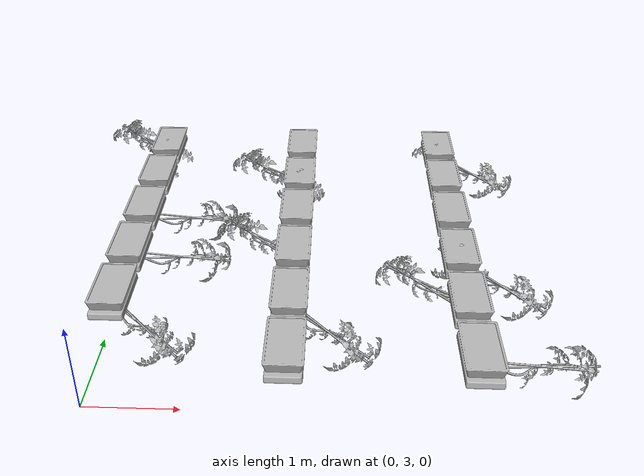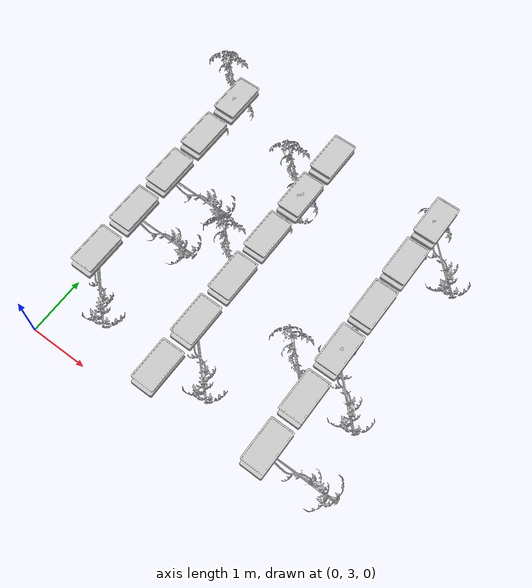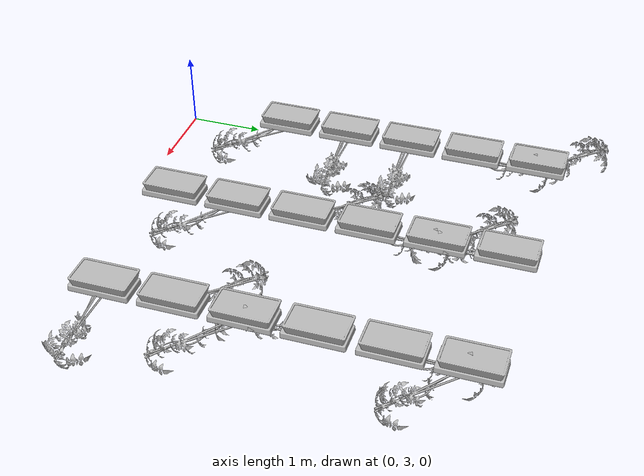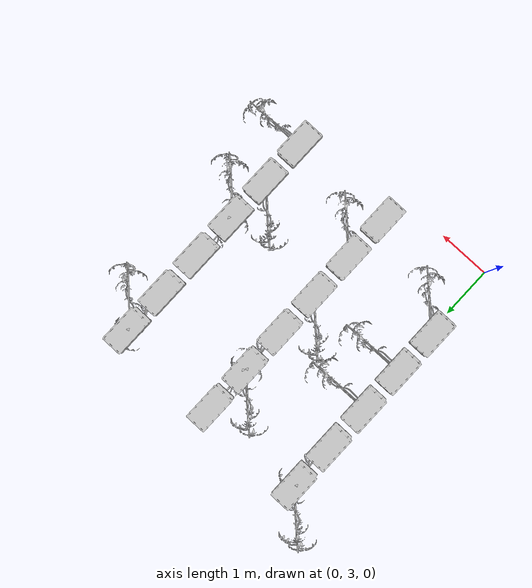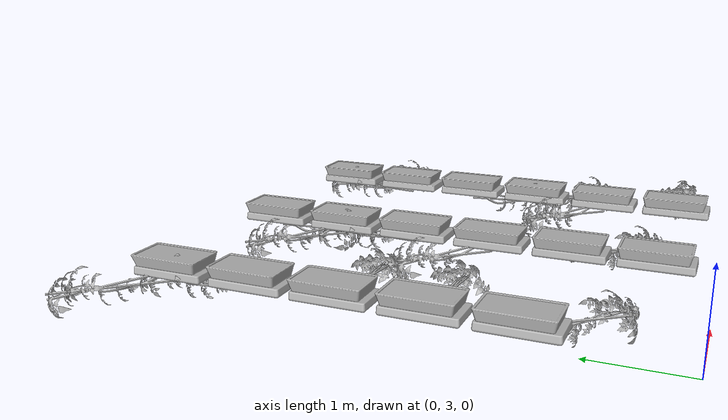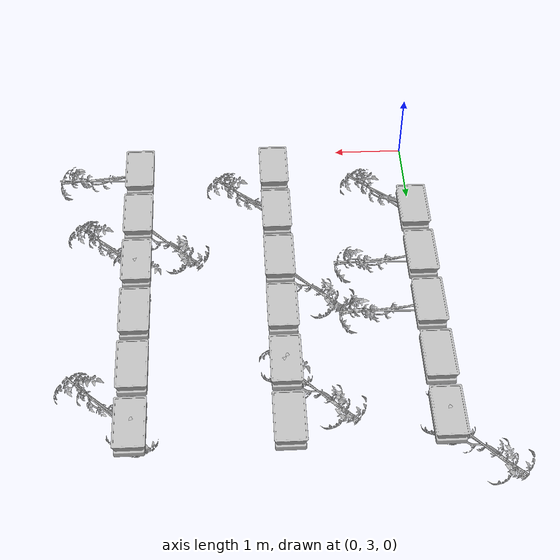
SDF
<sdf version="1.6">
 <world name="default">
  <model name="plant05">
   <static>1</static>
   <link name="tomato_plant_link">
    <visual name="visual">
     <pose>0 0 0 1.57 -0 0</pose>
     <geometry><mesh><uri>model://tomato_plant/meshes/tomato_plant.obj</uri></mesh></geometry>
    </visual>
    <collision name="collision"><geometry><box><size>0.1 0.1 0.1</size></box></geometry></collision>
   </link>
   <pose>0 4.5 0.18 0 -0 0.785</pose>
  </model>
  <model name="trough05">
   <static>1</static>
   <link name="trough_link">
    <visual name="visual"><geometry><mesh><uri>model://trough/meshes/truf.obj</uri></mesh></geometry></visual>
    <collision name="collision">
     <geometry><mesh><uri>model://trough/meshes/truf.obj</uri></mesh></geometry>
    </collision>
   </link>
   <pose>0 4.5 0.18 1.57 -0 1.57</pose>
  </model>
  <model name="plant06">
   <static>1</static>
   <link name="tomato_plant_link">
    <visual name="visual">
     <pose>0 0 0 1.57 -0 0</pose>
     <geometry><mesh><uri>model://tomato_plant/meshes/tomato_plant.obj</uri></mesh></geometry>
    </visual>
    <collision name="collision"><geometry><box><size>0.1 0.1 0.1</size></box></geometry></collision>
   </link>
   <pose>0 5.4 0.18 0 -0 1.57</pose>
  </model>
  <model name="trough06">
   <static>1</static>
   <link name="trough_link">
    <visual name="visual"><geometry><mesh><uri>model://trough/meshes/truf.obj</uri></mesh></geometry></visual>
    <collision name="collision">
     <geometry><mesh><uri>model://trough/meshes/truf.obj</uri></mesh></geometry>
    </collision>
   </link>
   <pose>0 5.4 0.18 1.57 -0 1.57</pose>
  </model>
  <model name="plant07">
   <static>1</static>
   <link name="tomato_plant_link">
    <visual name="visual">
     <pose>0 0 0 1.57 -0 0</pose>
     <geometry><mesh><uri>model://tomato_plant/meshes/tomato_plant.obj</uri></mesh></geometry>
    </visual>
    <collision name="collision"><geometry><box><size>0.1 0.1 0.1</size></box></geometry></collision>
   </link>
   <pose>0 6.3 0.18 0 -0 1.57</pose>
  </model>
  <model name="trough07">
   <static>1</static>
   <link name="trough_link">
    <visual name="visual"><geometry><mesh><uri>model://trough/meshes/truf.obj</uri></mesh></geometry></visual>
    <collision name="collision">
     <geometry><mesh><uri>model://trough/meshes/truf.obj</uri></mesh></geometry>
    </collision>
   </link>
   <pose>0 6.3 0.18 1.57 -0 1.57</pose>
  </model>
  <model name="plant08">
   <static>1</static>
   <link name="tomato_plant_link">
    <visual name="visual">
     <pose>0 0 0 1.57 -0 0</pose>
     <geometry><mesh><uri>model://tomato_plant/meshes/tomato_plant.obj</uri></mesh></geometry>
    </visual>
    <collision name="collision"><geometry><box><size>0.1 0.1 0.1</size></box></geometry></collision>
   </link>
   <pose>0 7.2 0.18 0 -0 3.14</pose>
  </model>
  <model name="trough08">
   <static>1</static>
   <link name="trough_link">
    <visual name="visual"><geometry><mesh><uri>model://trough/meshes/truf.obj</uri></mesh></geometry></visual>
    <collision name="collision">
     <geometry><mesh><uri>model://trough/meshes/truf.obj</uri></mesh></geometry>
    </collision>
   </link>
   <pose>0 7.2 0.18 1.57 -0 1.57</pose>
  </model>
  <model name="plant09">
   <static>1</static>
   <link name="tomato_plant_link">
    <visual name="visual">
     <pose>0 0 0 1.57 -0 0</pose>
     <geometry><mesh><uri>model://tomato_plant/meshes/tomato_plant.obj</uri></mesh></geometry>
    </visual>
    <collision name="collision"><geometry><box><size>0.1 0.1 0.1</size></box></geometry></collision>
   </link>
   <pose>0 8.1 0.18 0 0 -2.35319</pose>
  </model>
  <model name="trough09">
   <static>1</static>
   <link name="trough_link">
    <visual name="visual"><geometry><mesh><uri>model://trough/meshes/truf.obj</uri></mesh></geometry></visual>
    <collision name="collision">
     <geometry><mesh><uri>model://trough/meshes/truf.obj</uri></mesh></geometry>
    </collision>
   </link>
   <pose>0 8.1 0.18 1.57 -0 1.57</pose>
  </model>
  <model name="trough14">
   <static>1</static>
   <link name="trough_link">
    <visual name="visual"><geometry><mesh><uri>model://trough/meshes/truf.obj</uri></mesh></geometry></visual>
    <collision name="collision">
     <geometry><mesh><uri>model://trough/meshes/truf.obj</uri></mesh></geometry>
    </collision>
   </link>
   <pose>2 3.6 0.18 1.57 -0 1.57</pose>
  </model>
  <model name="plant15">
   <static>1</static>
   <link name="tomato_plant_link">
    <visual name="visual">
     <pose>0 0 0 1.57 -0 0</pose>
     <geometry><mesh><uri>model://tomato_plant/meshes/tomato_plant.obj</uri></mesh></geometry>
    </visual>
    <collision name="collision"><geometry><box><size>0.1 0.1 0.1</size></box></geometry></collision>
   </link>
   <pose>2 4.5 0.18 0 -0 0.785</pose>
  </model>
  <model name="trough15">
   <static>1</static>
   <link name="trough_link">
    <visual name="visual"><geometry><mesh><uri>model://trough/meshes/truf.obj</uri></mesh></geometry></visual>
    <collision name="collision">
     <geometry><mesh><uri>model://trough/meshes/truf.obj</uri></mesh></geometry>
    </collision>
   </link>
   <pose>2 4.5 0.18 1.57 -0 1.57</pose>
  </model>
  <model name="plant16">
   <static>1</static>
   <link name="tomato_plant_link">
    <visual name="visual">
     <pose>0 0 0 1.57 -0 0</pose>
     <geometry><mesh><uri>model://tomato_plant/meshes/tomato_plant.obj</uri></mesh></geometry>
    </visual>
    <collision name="collision"><geometry><box><size>0.1 0.1 0.1</size></box></geometry></collision>
   </link>
   <pose>2 5.4 0.18 0 0 -2.35319</pose>
  </model>
  <model name="trough16">
   <static>1</static>
   <link name="trough_link">
    <visual name="visual"><geometry><mesh><uri>model://trough/meshes/truf.obj</uri></mesh></geometry></visual>
    <collision name="collision">
     <geometry><mesh><uri>model://trough/meshes/truf.obj</uri></mesh></geometry>
    </collision>
   </link>
   <pose>2 5.4 0.18 1.57 -0 1.57</pose>
  </model>
  <model name="plant17">
   <static>1</static>
   <link name="tomato_plant_link">
    <visual name="visual">
     <pose>0 0 0 1.57 -0 0</pose>
     <geometry><mesh><uri>model://tomato_plant/meshes/tomato_plant.obj</uri></mesh></geometry>
    </visual>
    <collision name="collision"><geometry><box><size>0.1 0.1 0.1</size></box></geometry></collision>
   </link>
   <pose>2 6.3 0.18 0 -0 3.14</pose>
  </model>
  <model name="trough17">
   <static>1</static>
   <link name="trough_link">
    <visual name="visual"><geometry><mesh><uri>model://trough/meshes/truf.obj</uri></mesh></geometry></visual>
    <collision name="collision">
     <geometry><mesh><uri>model://trough/meshes/truf.obj</uri></mesh></geometry>
    </collision>
   </link>
   <pose>2 6.3 0.18 1.57 -0 1.57</pose>
  </model>
  <model name="plant18">
   <static>1</static>
   <link name="tomato_plant_link">
    <visual name="visual">
     <pose>0 0 0 1.57 -0 0</pose>
     <geometry><mesh><uri>model://tomato_plant/meshes/tomato_plant.obj</uri></mesh></geometry>
    </visual>
    <collision name="collision"><geometry><box><size>0.1 0.1 0.1</size></box></geometry></collision>
   </link>
   <pose>2 7.2 0.18 0 0 -2.35319</pose>
  </model>
  <model name="trough18">
   <static>1</static>
   <link name="trough_link">
    <visual name="visual"><geometry><mesh><uri>model://trough/meshes/truf.obj</uri></mesh></geometry></visual>
    <collision name="collision">
     <geometry><mesh><uri>model://trough/meshes/truf.obj</uri></mesh></geometry>
    </collision>
   </link>
   <pose>2 7.2 0.18 1.57 -0 1.57</pose>
  </model>
  <model name="plant19">
   <static>1</static>
   <link name="tomato_plant_link">
    <visual name="visual">
     <pose>0 0 0 1.57 -0 0</pose>
     <geometry><mesh><uri>model://tomato_plant/meshes/tomato_plant.obj</uri></mesh></geometry>
    </visual>
    <collision name="collision"><geometry><box><size>0.1 0.1 0.1</size></box></geometry></collision>
   </link>
   <pose>2 8.1 0.18 0 -0 0</pose>
  </model>
  <model name="trough19">
   <static>1</static>
   <link name="trough_link">
    <visual name="visual"><geometry><mesh><uri>model://trough/meshes/truf.obj</uri></mesh></geometry></visual>
    <collision name="collision">
     <geometry><mesh><uri>model://trough/meshes/truf.obj</uri></mesh></geometry>
    </collision>
   </link>
   <pose>2 8.1 0.18 1.57 -0 1.57</pose>
  </model>
  <model name="plant24">
   <static>1</static>
   <link name="tomato_plant_link">
    <visual name="visual">
     <pose>0 0 0 1.57 -0 0</pose>
     <geometry><mesh><uri>model://tomato_plant/meshes/tomato_plant.obj</uri></mesh></geometry>
    </visual>
    <collision name="collision"><geometry><box><size>0.1 0.1 0.1</size></box></geometry></collision>
   </link>
   <pose>4 3.6 0.18 0 -0 1.57</pose>
  </model>
  <model name="trough24">
   <static>1</static>
   <link name="trough_link">
    <visual name="visual"><geometry><mesh><uri>model://trough/meshes/truf.obj</uri></mesh></geometry></visual>
    <collision name="collision">
     <geometry><mesh><uri>model://trough/meshes/truf.obj</uri></mesh></geometry>
    </collision>
   </link>
   <pose>4 3.6 0.18 1.57 -0 1.57</pose>
  </model>
  <model name="plant25">
   <static>1</static>
   <link name="tomato_plant_link">
    <visual name="visual">
     <pose>0 0 0 1.57 -0 0</pose>
     <geometry><mesh><uri>model://tomato_plant/meshes/tomato_plant.obj</uri></mesh></geometry>
    </visual>
    <collision name="collision"><geometry><box><size>0.1 0.1 0.1</size></box></geometry></collision>
   </link>
   <pose>4 4.5 0.18 0 0 -2.35319</pose>
  </model>
  <model name="trough25">
   <static>1</static>
   <link name="trough_link">
    <visual name="visual"><geometry><mesh><uri>model://trough/meshes/truf.obj</uri></mesh></geometry></visual>
    <collision name="collision">
     <geometry><mesh><uri>model://trough/meshes/truf.obj</uri></mesh></geometry>
    </collision>
   </link>
   <pose>4 4.5 0.18 1.57 -0 1.57</pose>
  </model>
  <model name="plant26">
   <static>1</static>
   <link name="tomato_plant_link">
    <visual name="visual">
     <pose>0 0 0 1.57 -0 0</pose>
     <geometry><mesh><uri>model://tomato_plant/meshes/tomato_plant.obj</uri></mesh></geometry>
    </visual>
    <collision name="collision"><geometry><box><size>0.1 0.1 0.1</size></box></geometry></collision>
   </link>
   <pose>4 5.4 0.18 0 -0 0.785</pose>
  </model>
  <model name="trough26">
   <static>1</static>
   <link name="trough_link">
    <visual name="visual"><geometry><mesh><uri>model://trough/meshes/truf.obj</uri></mesh></geometry></visual>
    <collision name="collision">
     <geometry><mesh><uri>model://trough/meshes/truf.obj</uri></mesh></geometry>
    </collision>
   </link>
   <pose>4 5.4 0.18 1.57 -0 1.57</pose>
  </model>
  <model name="plant27">
   <static>1</static>
   <link name="tomato_plant_link">
    <visual name="visual">
     <pose>0 0 0 1.57 -0 0</pose>
     <geometry><mesh><uri>model://tomato_plant/meshes/tomato_plant.obj</uri></mesh></geometry>
    </visual>
    <collision name="collision"><geometry><box><size>0.1 0.1 0.1</size></box></geometry></collision>
   </link>
   <pose>4 6.3 0.18 0 -0 0</pose>
  </model>
  <model name="trough27">
   <static>1</static>
   <link name="trough_link">
    <visual name="visual"><geometry><mesh><uri>model://trough/meshes/truf.obj</uri></mesh></geometry></visual>
    <collision name="collision">
     <geometry><mesh><uri>model://trough/meshes/truf.obj</uri></mesh></geometry>
    </collision>
   </link>
   <pose>4 6.3 0.18 1.57 -0 1.57</pose>
  </model>
  <model name="plant28">
   <static>1</static>
   <link name="tomato_plant_link">
    <visual name="visual">
     <pose>0 0 0 1.57 -0 0</pose>
     <geometry><mesh><uri>model://tomato_plant/meshes/tomato_plant.obj</uri></mesh></geometry>
    </visual>
    <collision name="collision"><geometry><box><size>0.1 0.1 0.1</size></box></geometry></collision>
   </link>
   <pose>4 7.2 0.18 0 -0 3.14</pose>
  </model>
  <model name="trough28">
   <static>1</static>
   <link name="trough_link">
    <visual name="visual"><geometry><mesh><uri>model://trough/meshes/truf.obj</uri></mesh></geometry></visual>
    <collision name="collision">
     <geometry><mesh><uri>model://trough/meshes/truf.obj</uri></mesh></geometry>
    </collision>
   </link>
   <pose>4 7.2 0.18 1.57 -0 1.57</pose>
  </model>
  <model name="plant29">
   <static>1</static>
   <link name="tomato_plant_link">
    <visual name="visual">
     <pose>0 0 0 1.57 -0 0</pose>
     <geometry><mesh><uri>model://tomato_plant/meshes/tomato_plant.obj</uri></mesh></geometry>
    </visual>
    <collision name="collision"><geometry><box><size>0.1 0.1 0.1</size></box></geometry></collision>
   </link>
   <pose>4 8.1 0.18 0 -0 0.785</pose>
  </model>
  <model name="trough29">
   <static>1</static>
   <link name="trough_link">
    <visual name="visual"><geometry><mesh><uri>model://trough/meshes/truf.obj</uri></mesh></geometry></visual>
    <collision name="collision">
     <geometry><mesh><uri>model://trough/meshes/truf.obj</uri></mesh></geometry>
    </collision>
   </link>
   <pose>4 8.1 0.18 1.57 -0 1.57</pose>
  </model>
 </world>
</sdf>
